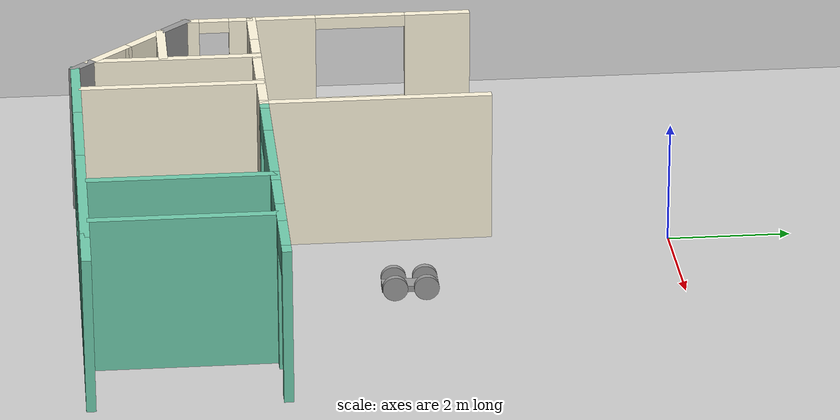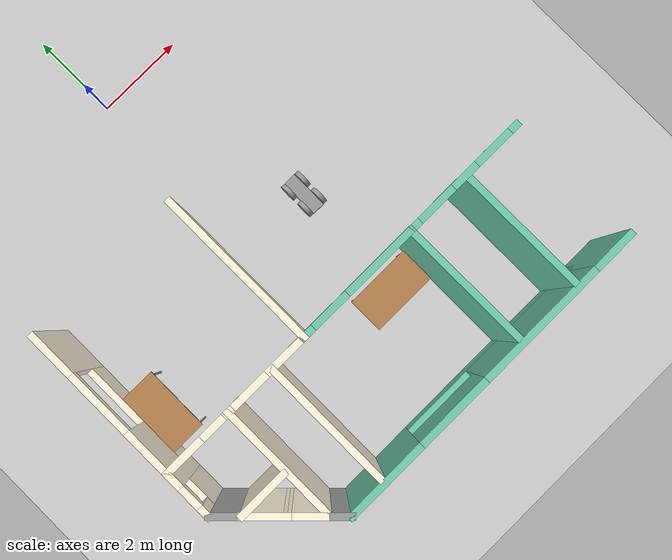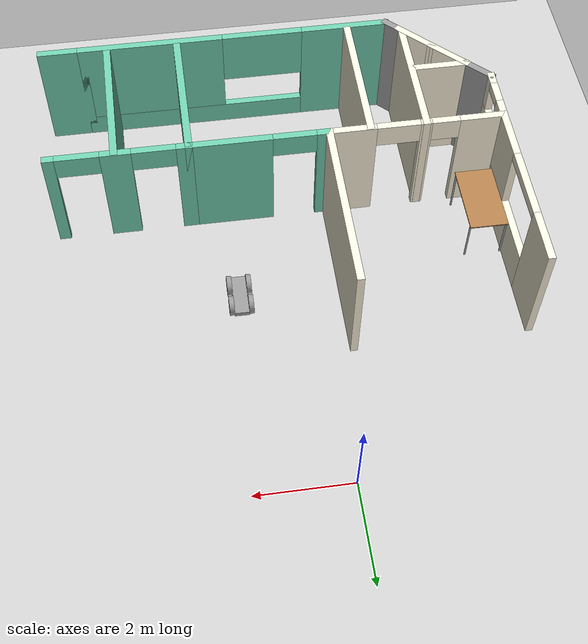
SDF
<sdf version="1.6">
 <world name="default">
  <model name="ground_plane">
   <static>1</static>
   <link name="link">
    <collision name="collision">
     <geometry><plane><normal>0 0 1</normal><size>100 100</size></plane></geometry>
     <surface><friction><ode><mu>100</mu><mu2>50</mu2></ode></friction></surface>
    </collision>
    <visual name="visual">
     <cast_shadows>0</cast_shadows>
     <geometry><plane><normal>0 0 1</normal><size>100 100</size></plane></geometry>
     <material>
      <script><uri>file://media/materials/scripts/gazebo.material</uri><name>Gazebo/Grey</name></script>
     </material>
    </visual>
   </link>
  </model>
  <model name="Building">
   <pose>0.68406 -1.71329 0 0 -0 0</pose>
   <link name="Wall_103">
    <collision name="Wall_103_Collision">
     <geometry><box><size>2.75 0.15 2.5</size></box></geometry>
     <pose>0 0 1.25 0 -0 0</pose>
    </collision>
    <visual name="Wall_103_Visual">
     <pose>0 0 1.25 0 -0 0</pose>
     <geometry><box><size>2.75 0.15 2.5</size></box></geometry>
     <material>
      <script><uri>file://media/materials/scripts/gazebo.material</uri><name>Gazebo/Grey</name></script>
      <ambient>1 0.968627 0.870588 1</ambient>
     </material>
     <meta><layer>0</layer></meta>
    </visual>
    <pose>-3.10082 -6.11639 0 0 -0 1.5708</pose>
   </link>
   <link name="Wall_105">
    <collision name="Wall_105_Collision">
     <geometry><box><size>1.0071 0.15 2.5</size></box></geometry>
     <pose>0 0 1.25 0 -0 0</pose>
    </collision>
    <visual name="Wall_105_Visual">
     <pose>0 0 1.25 0 -0 0</pose>
     <geometry><box><size>1.0071 0.15 2.5</size></box></geometry>
     <material>
      <script><uri>file://media/materials/scripts/gazebo.material</uri><name>Gazebo/Grey</name></script>
      <ambient>1 0.968627 0.870588 1</ambient>
     </material>
     <meta><layer>0</layer></meta>
    </visual>
    <pose>-3.96602 -6.6535 0 0 0 -0.777148</pose>
   </link>
   <link name="Wall_106">
    <collision name="Wall_106_Collision">
     <geometry><box><size>1 0.15 2.5</size></box></geometry>
     <pose>0 0 1.25 0 -0 0</pose>
    </collision>
    <visual name="Wall_106_Visual">
     <pose>0 0 1.25 0 -0 0</pose>
     <geometry><box><size>1 0.15 2.5</size></box></geometry>
     <material>
      <script><uri>file://media/materials/scripts/gazebo.material</uri><name>Gazebo/Grey</name></script>
      <ambient>1 0.968627 0.870588 1</ambient>
     </material>
     <meta><layer>0</layer></meta>
    </visual>
    <pose>-3.35998 -7.25454 0 0 0 -0.785398</pose>
   </link>
   <link name="Wall_107">
    <collision name="Wall_107_Collision">
     <geometry><box><size>0.5 0.15 2.5</size></box></geometry>
     <pose>0 0 1.25 0 -0 0</pose>
    </collision>
    <visual name="Wall_107_Visual">
     <pose>0 0 1.25 0 -0 0</pose>
     <geometry><box><size>0.5 0.15 2.5</size></box></geometry>
     <material>
      <script><uri>file://media/materials/scripts/gazebo.material</uri><name>Gazebo/Grey</name></script>
      <ambient>1 1 1 1</ambient>
     </material>
     <meta><layer>0</layer></meta>
    </visual>
    <pose>-2.93571 -7.6788 0 0 0 -0.785398</pose>
   </link>
   <link name="Wall_108">
    <pose>0.488031 -7.80255 0 0 -0 0</pose>
    <visual name="Wall_108_Visual_0">
     <pose>-2.41446 0 1.25 0 -0 0</pose>
     <geometry><box><size>1.92107 0.15 2.5</size></box></geometry>
     <material>
      <script><uri>file://media/materials/scripts/gazebo.material</uri><name>Gazebo/Grey</name></script>
      <ambient>0.435294 0.796078 0.67451 1</ambient>
     </material>
     <meta><layer>0</layer></meta>
    </visual>
    <collision name="Wall_108_Collision_0">
     <geometry><box><size>1.92107 0.15 2.5</size></box></geometry>
     <pose>-2.41446 0 1.25 0 -0 0</pose>
    </collision>
    <visual name="Wall_108_Visual_1">
     <pose>0.960535 0 0.25 0 -0 0</pose>
     <geometry><box><size>4.82893 0.15 0.5</size></box></geometry>
     <material>
      <script><uri>file://media/materials/scripts/gazebo.material</uri><name>Gazebo/Grey</name></script>
      <ambient>0.435294 0.796078 0.67451 1</ambient>
     </material>
     <meta><layer>0</layer></meta>
    </visual>
    <collision name="Wall_108_Collision_1">
     <geometry><box><size>4.82893 0.15 0.5</size></box></geometry>
     <pose>0.960535 0 0.25 0 -0 0</pose>
    </collision>
    <visual name="Wall_108_Visual_2">
     <pose>1.82294 0 1.5 0 -0 0</pose>
     <geometry><box><size>3.10413 0.15 2</size></box></geometry>
     <material>
      <script><uri>file://media/materials/scripts/gazebo.material</uri><name>Gazebo/Grey</name></script>
      <ambient>0.435294 0.796078 0.67451 1</ambient>
     </material>
     <meta><layer>0</layer></meta>
    </visual>
    <collision name="Wall_108_Collision_2">
     <geometry><box><size>3.10413 0.15 2</size></box></geometry>
     <pose>1.82294 0 1.5 0 -0 0</pose>
    </collision>
    <visual name="Wall_108_Visual_3">
     <pose>-0.591528 0 1.9 0 -0 0</pose>
     <geometry><box><size>1.7248 0.15 1.2</size></box></geometry>
     <material>
      <script><uri>file://media/materials/scripts/gazebo.material</uri><name>Gazebo/Grey</name></script>
      <ambient>0.435294 0.796078 0.67451 1</ambient>
     </material>
     <meta><layer>0</layer></meta>
    </visual>
    <collision name="Wall_108_Collision_3">
     <geometry><box><size>1.7248 0.15 1.2</size></box></geometry>
     <pose>-0.591528 0 1.9 0 -0 0</pose>
    </collision>
   </link>
   <link name="Wall_112">
    <collision name="Wall_112_Collision">
     <geometry><box><size>1 0.15 2.5</size></box></geometry>
     <pose>0 0 1.25 0 -0 0</pose>
    </collision>
    <visual name="Wall_112_Visual">
     <pose>0 0 1.25 0 -0 0</pose>
     <geometry><box><size>1 0.15 2.5</size></box></geometry>
     <material>
      <script><uri>file://media/materials/scripts/gazebo.material</uri><name>Gazebo/Grey</name></script>
      <ambient>0.435294 0.796078 0.67451 1</ambient>
     </material>
     <meta><layer>0</layer></meta>
    </visual>
    <pose>4.21303 -7.80255 0 0 -0 0</pose>
   </link>
   <link name="Wall_131">
    <pose>0.319198 -4.81871 0 0 -0 0</pose>
    <visual name="Wall_131_Visual_0">
     <pose>-1.33501 0 1.25 0 -0 0</pose>
     <geometry><box><size>0.329979 0.15 2.5</size></box></geometry>
     <material>
      <script><uri>file://media/materials/scripts/gazebo.material</uri><name>Gazebo/Grey</name></script>
      <ambient>0.435294 0.796078 0.67451 1</ambient>
     </material>
     <meta><layer>0</layer></meta>
    </visual>
    <collision name="Wall_131_Collision_0">
     <geometry><box><size>0.329979 0.15 2.5</size></box></geometry>
     <pose>-1.33501 0 1.25 0 -0 0</pose>
    </collision>
    <visual name="Wall_131_Visual_1">
     <pose>0.614989 0 1.25 0 -0 0</pose>
     <geometry><box><size>1.77002 0.15 2.5</size></box></geometry>
     <material>
      <script><uri>file://media/materials/scripts/gazebo.material</uri><name>Gazebo/Grey</name></script>
      <ambient>0.435294 0.796078 0.67451 1</ambient>
     </material>
     <meta><layer>0</layer></meta>
    </visual>
    <collision name="Wall_131_Collision_1">
     <geometry><box><size>1.77002 0.15 2.5</size></box></geometry>
     <pose>0.614989 0 1.25 0 -0 0</pose>
    </collision>
    <visual name="Wall_131_Visual_2">
     <pose>-0.720021 0 2.25 0 -0 0</pose>
     <geometry><box><size>0.9 0.15 0.5</size></box></geometry>
     <material>
      <script><uri>file://media/materials/scripts/gazebo.material</uri><name>Gazebo/Grey</name></script>
      <ambient>0.435294 0.796078 0.67451 1</ambient>
     </material>
     <meta><layer>0</layer></meta>
    </visual>
    <collision name="Wall_131_Collision_2">
     <geometry><box><size>0.9 0.15 0.5</size></box></geometry>
     <pose>-0.720021 0 2.25 0 -0 0</pose>
    </collision>
   </link>
   <link name="Wall_132">
    <collision name="Wall_132_Collision">
     <geometry><box><size>3 0.15 2.5</size></box></geometry>
     <pose>0 0 1.25 0 -0 0</pose>
    </collision>
    <visual name="Wall_132_Visual">
     <pose>0 0 1.25 0 -0 0</pose>
     <geometry><box><size>3 0.15 2.5</size></box></geometry>
     <material>
      <script><uri>file://media/materials/scripts/gazebo.material</uri><name>Gazebo/Grey</name></script>
      <ambient>0.435294 0.796078 0.67451 1</ambient>
     </material>
     <meta><layer>0</layer></meta>
    </visual>
    <pose>1.7442 -6.24371 0 0 0 -1.5708</pose>
   </link>
   <link name="Wall_135">
    <pose>3.1692 -4.81871 0 0 -0 0</pose>
    <visual name="Wall_135_Visual_0">
     <pose>-1.33501 0 1.25 0 -0 0</pose>
     <geometry><box><size>0.329979 0.15 2.5</size></box></geometry>
     <material>
      <script><uri>file://media/materials/scripts/gazebo.material</uri><name>Gazebo/Grey</name></script>
      <ambient>0.435294 0.796078 0.67451 1</ambient>
     </material>
     <meta><layer>0</layer></meta>
    </visual>
    <collision name="Wall_135_Collision_0">
     <geometry><box><size>0.329979 0.15 2.5</size></box></geometry>
     <pose>-1.33501 0 1.25 0 -0 0</pose>
    </collision>
    <visual name="Wall_135_Visual_1">
     <pose>0.044978 0 1.25 0 -0 0</pose>
     <geometry><box><size>0.63 0.15 2.5</size></box></geometry>
     <material>
      <script><uri>file://media/materials/scripts/gazebo.material</uri><name>Gazebo/Grey</name></script>
      <ambient>0.435294 0.796078 0.67451 1</ambient>
     </material>
     <meta><layer>0</layer></meta>
    </visual>
    <collision name="Wall_135_Collision_1">
     <geometry><box><size>0.63 0.15 2.5</size></box></geometry>
     <pose>0.044978 0 1.25 0 -0 0</pose>
    </collision>
    <visual name="Wall_135_Visual_2">
     <pose>1.37999 0 1.25 0 -0 0</pose>
     <geometry><box><size>0.240022 0.15 2.5</size></box></geometry>
     <material>
      <script><uri>file://media/materials/scripts/gazebo.material</uri><name>Gazebo/Grey</name></script>
      <ambient>0.435294 0.796078 0.67451 1</ambient>
     </material>
     <meta><layer>0</layer></meta>
    </visual>
    <collision name="Wall_135_Collision_2">
     <geometry><box><size>0.240022 0.15 2.5</size></box></geometry>
     <pose>1.37999 0 1.25 0 -0 0</pose>
    </collision>
    <visual name="Wall_135_Visual_3">
     <pose>-0.720021 0 2.25 0 -0 0</pose>
     <geometry><box><size>0.9 0.15 0.5</size></box></geometry>
     <material>
      <script><uri>file://media/materials/scripts/gazebo.material</uri><name>Gazebo/Grey</name></script>
      <ambient>0.435294 0.796078 0.67451 1</ambient>
     </material>
     <meta><layer>0</layer></meta>
    </visual>
    <collision name="Wall_135_Collision_3">
     <geometry><box><size>0.9 0.15 0.5</size></box></geometry>
     <pose>-0.720021 0 2.25 0 -0 0</pose>
    </collision>
    <visual name="Wall_135_Visual_4">
     <pose>0.809978 0 2.25 0 -0 0</pose>
     <geometry><box><size>0.9 0.15 0.5</size></box></geometry>
     <material>
      <script><uri>file://media/materials/scripts/gazebo.material</uri><name>Gazebo/Grey</name></script>
      <ambient>0.435294 0.796078 0.67451 1</ambient>
     </material>
     <meta><layer>0</layer></meta>
    </visual>
    <collision name="Wall_135_Collision_4">
     <geometry><box><size>0.9 0.15 0.5</size></box></geometry>
     <pose>0.809978 0 2.25 0 -0 0</pose>
    </collision>
   </link>
   <link name="Wall_137">
    <collision name="Wall_137_Collision">
     <geometry><box><size>3 0.15 2.5</size></box></geometry>
     <pose>0 0 1.25 0 -0 0</pose>
    </collision>
    <visual name="Wall_137_Visual">
     <pose>0 0 1.25 0 -0 0</pose>
     <geometry><box><size>3 0.15 2.5</size></box></geometry>
     <material>
      <script><uri>file://media/materials/scripts/gazebo.material</uri><name>Gazebo/Grey</name></script>
      <ambient>0.435294 0.796078 0.67451 1</ambient>
     </material>
     <meta><layer>0</layer></meta>
    </visual>
    <pose>3.23918 -6.26139 0 0 0 -1.5708</pose>
   </link>
   <link name="Wall_62">
    <collision name="Wall_62_Collision">
     <geometry><box><size>3.75 0.15 2.5</size></box></geometry>
     <pose>0 0 1.25 0 -0 0</pose>
    </collision>
    <visual name="Wall_62_Visual">
     <pose>0 0 1.25 0 -0 0</pose>
     <geometry><box><size>3.75 0.15 2.5</size></box></geometry>
     <material>
      <script><uri>file://media/materials/scripts/gazebo.material</uri><name>Gazebo/Grey</name></script>
      <ambient>1 0.968627 0.870588 1</ambient>
     </material>
     <meta><layer>0</layer></meta>
    </visual>
    <pose>-1.1058 -3.01871 0 0 0 -1.5708</pose>
   </link>
   <link name="Wall_71">
    <pose>-4.7058 -3.01871 0 0 0 -1.5708</pose>
    <visual name="Wall_71_Visual_0">
     <pose>-1.32556 0 1.25 0 -0 0</pose>
     <geometry><box><size>1.09888 0.15 2.5</size></box></geometry>
     <material>
      <script><uri>file://media/materials/scripts/gazebo.material</uri><name>Gazebo/Grey</name></script>
      <ambient>1 0.968627 0.870588 1</ambient>
     </material>
     <meta><layer>0</layer></meta>
    </visual>
    <collision name="Wall_71_Collision_0">
     <geometry><box><size>1.09888 0.15 2.5</size></box></geometry>
     <pose>-1.32556 0 1.25 0 -0 0</pose>
    </collision>
    <visual name="Wall_71_Visual_1">
     <pose>0.549443 0 0.5 0 -0 0</pose>
     <geometry><box><size>2.65111 0.15 1</size></box></geometry>
     <material>
      <script><uri>file://media/materials/scripts/gazebo.material</uri><name>Gazebo/Grey</name></script>
      <ambient>1 0.968627 0.870588 1</ambient>
     </material>
     <meta><layer>0</layer></meta>
    </visual>
    <collision name="Wall_71_Collision_1">
     <geometry><box><size>2.65111 0.15 1</size></box></geometry>
     <pose>0.549443 0 0.5 0 -0 0</pose>
    </collision>
    <visual name="Wall_71_Visual_2">
     <pose>1.29944 0 1.75 0 -0 0</pose>
     <geometry><box><size>1.15112 0.15 1.5</size></box></geometry>
     <material>
      <script><uri>file://media/materials/scripts/gazebo.material</uri><name>Gazebo/Grey</name></script>
      <ambient>1 0.968627 0.870588 1</ambient>
     </material>
     <meta><layer>0</layer></meta>
    </visual>
    <collision name="Wall_71_Collision_2">
     <geometry><box><size>1.15112 0.15 1.5</size></box></geometry>
     <pose>1.29944 0 1.75 0 -0 0</pose>
    </collision>
    <visual name="Wall_71_Visual_3">
     <pose>-0.026115 0 2.4 0 -0 0</pose>
     <geometry><box><size>1.5 0.15 0.2</size></box></geometry>
     <material>
      <script><uri>file://media/materials/scripts/gazebo.material</uri><name>Gazebo/Grey</name></script>
      <ambient>1 0.968627 0.870588 1</ambient>
     </material>
     <meta><layer>0</layer></meta>
    </visual>
    <collision name="Wall_71_Collision_3">
     <geometry><box><size>1.5 0.15 0.2</size></box></geometry>
     <pose>-0.026115 0 2.4 0 -0 0</pose>
    </collision>
   </link>
   <link name="Wall_72">
    <pose>-2.9058 -4.81871 0 0 -0 0</pose>
    <visual name="Wall_72_Visual_0">
     <pose>-1.38251 0 1.25 0 -0 0</pose>
     <geometry><box><size>0.984979 0.15 2.5</size></box></geometry>
     <material>
      <script><uri>file://media/materials/scripts/gazebo.material</uri><name>Gazebo/Grey</name></script>
      <ambient>1 0.968627 0.870588 1</ambient>
     </material>
     <meta><layer>0</layer></meta>
    </visual>
    <collision name="Wall_72_Collision_0">
     <geometry><box><size>0.984979 0.15 2.5</size></box></geometry>
     <pose>-1.38251 0 1.25 0 -0 0</pose>
    </collision>
    <visual name="Wall_72_Visual_1">
     <pose>-0.192521 0 1.25 0 -0 0</pose>
     <geometry><box><size>0.235 0.15 2.5</size></box></geometry>
     <material>
      <script><uri>file://media/materials/scripts/gazebo.material</uri><name>Gazebo/Grey</name></script>
      <ambient>1 0.968627 0.870588 1</ambient>
     </material>
     <meta><layer>0</layer></meta>
    </visual>
    <collision name="Wall_72_Collision_1">
     <geometry><box><size>0.235 0.15 2.5</size></box></geometry>
     <pose>-0.192521 0 1.25 0 -0 0</pose>
    </collision>
    <visual name="Wall_72_Visual_2">
     <pose>1.34999 0 1.25 0 -0 0</pose>
     <geometry><box><size>1.05002 0.15 2.5</size></box></geometry>
     <material>
      <script><uri>file://media/materials/scripts/gazebo.material</uri><name>Gazebo/Grey</name></script>
      <ambient>1 0.968627 0.870588 1</ambient>
     </material>
     <meta><layer>0</layer></meta>
    </visual>
    <collision name="Wall_72_Collision_2">
     <geometry><box><size>1.05002 0.15 2.5</size></box></geometry>
     <pose>1.34999 0 1.25 0 -0 0</pose>
    </collision>
    <visual name="Wall_72_Visual_3">
     <pose>-0.600021 0 2.25 0 -0 0</pose>
     <geometry><box><size>0.58 0.15 0.5</size></box></geometry>
     <material>
      <script><uri>file://media/materials/scripts/gazebo.material</uri><name>Gazebo/Grey</name></script>
      <ambient>1 0.968627 0.870588 1</ambient>
     </material>
     <meta><layer>0</layer></meta>
    </visual>
    <collision name="Wall_72_Collision_3">
     <geometry><box><size>0.58 0.15 0.5</size></box></geometry>
     <pose>-0.600021 0 2.25 0 -0 0</pose>
    </collision>
    <visual name="Wall_72_Visual_4">
     <pose>0.374979 0 2.25 0 -0 0</pose>
     <geometry><box><size>0.9 0.15 0.5</size></box></geometry>
     <material>
      <script><uri>file://media/materials/scripts/gazebo.material</uri><name>Gazebo/Grey</name></script>
      <ambient>1 0.968627 0.870588 1</ambient>
     </material>
     <meta><layer>0</layer></meta>
    </visual>
    <collision name="Wall_72_Collision_4">
     <geometry><box><size>0.9 0.15 0.5</size></box></geometry>
     <pose>0.374979 0 2.25 0 -0 0</pose>
    </collision>
   </link>
   <link name="Wall_86">
    <collision name="Wall_86_Collision">
     <geometry><box><size>3 0.15 2.5</size></box></geometry>
     <pose>0 0 1.25 0 -0 0</pose>
    </collision>
    <visual name="Wall_86_Visual">
     <pose>0 0 1.25 0 -0 0</pose>
     <geometry><box><size>3 0.15 2.5</size></box></geometry>
     <material>
      <script><uri>file://media/materials/scripts/gazebo.material</uri><name>Gazebo/Grey</name></script>
      <ambient>1 0.968627 0.870588 1</ambient>
     </material>
     <meta><layer>0</layer></meta>
    </visual>
    <pose>-1.95082 -6.26139 0 0 0 -1.5708</pose>
   </link>
   <link name="Wall_91">
    <pose>-4.7058 -5.36871 0 0 0 -1.5708</pose>
    <visual name="Wall_91_Visual_0">
     <pose>-0.399464 0 1.25 0 -0 0</pose>
     <geometry><box><size>0.451073 0.15 2.5</size></box></geometry>
     <material>
      <script><uri>file://media/materials/scripts/gazebo.material</uri><name>Gazebo/Grey</name></script>
      <ambient>1 0.968627 0.870588 1</ambient>
     </material>
     <meta><layer>0</layer></meta>
    </visual>
    <collision name="Wall_91_Collision_0">
     <geometry><box><size>0.451073 0.15 2.5</size></box></geometry>
     <pose>-0.399464 0 1.25 0 -0 0</pose>
    </collision>
    <visual name="Wall_91_Visual_1">
     <pose>0.225536 0 0.85 0 -0 0</pose>
     <geometry><box><size>0.798927 0.15 1.7</size></box></geometry>
     <material>
      <script><uri>file://media/materials/scripts/gazebo.material</uri><name>Gazebo/Grey</name></script>
      <ambient>1 0.968627 0.870588 1</ambient>
     </material>
     <meta><layer>0</layer></meta>
    </visual>
    <collision name="Wall_91_Collision_1">
     <geometry><box><size>0.798927 0.15 1.7</size></box></geometry>
     <pose>0.225536 0 0.85 0 -0 0</pose>
    </collision>
    <visual name="Wall_91_Visual_2">
     <pose>0.475536 0 2.1 0 -0 0</pose>
     <geometry><box><size>0.298927 0.15 0.8</size></box></geometry>
     <material>
      <script><uri>file://media/materials/scripts/gazebo.material</uri><name>Gazebo/Grey</name></script>
      <ambient>1 0.968627 0.870588 1</ambient>
     </material>
     <meta><layer>0</layer></meta>
    </visual>
    <collision name="Wall_91_Collision_2">
     <geometry><box><size>0.298927 0.15 0.8</size></box></geometry>
     <pose>0.475536 0 2.1 0 -0 0</pose>
    </collision>
    <visual name="Wall_91_Visual_3">
     <pose>0.076073 0 2.4 0 -0 0</pose>
     <geometry><box><size>0.5 0.15 0.2</size></box></geometry>
     <material>
      <script><uri>file://media/materials/scripts/gazebo.material</uri><name>Gazebo/Grey</name></script>
      <ambient>1 0.968627 0.870588 1</ambient>
     </material>
     <meta><layer>0</layer></meta>
    </visual>
    <collision name="Wall_91_Collision_3">
     <geometry><box><size>0.5 0.15 0.2</size></box></geometry>
     <pose>0.076073 0 2.4 0 -0 0</pose>
    </collision>
   </link>
   <link name="Wall_92">
    <collision name="Wall_92_Collision">
     <geometry><box><size>0.764142 0.15 2.5</size></box></geometry>
     <pose>0 0 1.25 0 -0 0</pose>
    </collision>
    <visual name="Wall_92_Visual">
     <pose>0 0 1.25 0 -0 0</pose>
     <geometry><box><size>0.764142 0.15 2.5</size></box></geometry>
     <material>
      <script><uri>file://media/materials/scripts/gazebo.material</uri><name>Gazebo/Grey</name></script>
      <ambient>1 1 1 1</ambient>
     </material>
     <meta><layer>0</layer></meta>
    </visual>
    <pose>-4.48867 -6.13584 0 0 0 -0.785398</pose>
   </link>
   <link name="Wall_97">
    <collision name="Wall_97_Collision">
     <geometry><box><size>1.25 0.15 2.5</size></box></geometry>
     <pose>0 0 1.25 0 -0 0</pose>
    </collision>
    <visual name="Wall_97_Visual">
     <pose>0 0 1.25 0 -0 0</pose>
     <geometry><box><size>1.25 0.15 2.5</size></box></geometry>
     <material>
      <script><uri>file://media/materials/scripts/gazebo.material</uri><name>Gazebo/Grey</name></script>
      <ambient>1 0.968627 0.870588 1</ambient>
     </material>
     <meta><layer>0</layer></meta>
    </visual>
    <pose>-3.71154 -6.35298 0 0 -0 0</pose>
   </link>
   <static>1</static>
  </model>
  <model name="table">
   <static>1</static>
   <link name="link">
    <collision name="surface">
     <pose>0 0 1 0 -0 0</pose>
     <geometry><box><size>1.5 0.8 0.03</size></box></geometry>
     <surface><friction><ode><mu>0.6</mu><mu2>0.6</mu2></ode></friction></surface>
    </collision>
    <visual name="visual1">
     <pose>0 0 1 0 -0 0</pose>
     <geometry><box><size>1.5 0.8 0.03</size></box></geometry>
     <material>
      <script><uri>file://media/materials/scripts/gazebo.material</uri><name>Gazebo/Wood</name></script>
     </material>
    </visual>
    <collision name="front_left_leg">
     <pose>0.68 0.38 0.5 0 -0 0</pose>
     <geometry><cylinder><radius>0.02</radius><length>1</length></cylinder></geometry>
    </collision>
    <visual name="front_left_leg">
     <pose>0.68 0.38 0.5 0 -0 0</pose>
     <geometry><cylinder><radius>0.02</radius><length>1</length></cylinder></geometry>
     <material>
      <script><uri>file://media/materials/scripts/gazebo.material</uri><name>Gazebo/Grey</name></script>
     </material>
    </visual>
    <collision name="front_right_leg">
     <pose>0.68 -0.38 0.5 0 -0 0</pose>
     <geometry><cylinder><radius>0.02</radius><length>1</length></cylinder></geometry>
    </collision>
    <visual name="front_right_leg">
     <pose>0.68 -0.38 0.5 0 -0 0</pose>
     <geometry><cylinder><radius>0.02</radius><length>1</length></cylinder></geometry>
     <material>
      <script><uri>file://media/materials/scripts/gazebo.material</uri><name>Gazebo/Grey</name></script>
     </material>
    </visual>
    <collision name="back_right_leg">
     <pose>-0.68 -0.38 0.5 0 -0 0</pose>
     <geometry><cylinder><radius>0.02</radius><length>1</length></cylinder></geometry>
    </collision>
    <visual name="back_right_leg">
     <pose>-0.68 -0.38 0.5 0 -0 0</pose>
     <geometry><cylinder><radius>0.02</radius><length>1</length></cylinder></geometry>
     <material>
      <script><uri>file://media/materials/scripts/gazebo.material</uri><name>Gazebo/Grey</name></script>
     </material>
    </visual>
    <collision name="back_left_leg">
     <pose>-0.68 0.38 0.5 0 -0 0</pose>
     <geometry><cylinder><radius>0.02</radius><length>1</length></cylinder></geometry>
    </collision>
    <visual name="back_left_leg">
     <pose>-0.68 0.38 0.5 0 -0 0</pose>
     <geometry><cylinder><radius>0.02</radius><length>1</length></cylinder></geometry>
     <material>
      <script><uri>file://media/materials/scripts/gazebo.material</uri><name>Gazebo/Grey</name></script>
     </material>
    </visual>
   </link>
   <pose>-3.54419 -5.59044 0 0 0 -1.57392</pose>
  </model>
  <model name="table_0">
   <static>1</static>
   <link name="link">
    <collision name="surface">
     <pose>0 0 1 0 -0 0</pose>
     <geometry><box><size>1.5 0.8 0.03</size></box></geometry>
     <surface><friction><ode><mu>0.6</mu><mu2>0.6</mu2></ode></friction></surface>
    </collision>
    <visual name="visual1">
     <pose>0 0 1 0 -0 0</pose>
     <geometry><box><size>1.5 0.8 0.03</size></box></geometry>
     <material>
      <script><uri>file://media/materials/scripts/gazebo.material</uri><name>Gazebo/Wood</name></script>
     </material>
    </visual>
    <collision name="front_left_leg">
     <pose>0.68 0.38 0.5 0 -0 0</pose>
     <geometry><cylinder><radius>0.02</radius><length>1</length></cylinder></geometry>
    </collision>
    <visual name="front_left_leg">
     <pose>0.68 0.38 0.5 0 -0 0</pose>
     <geometry><cylinder><radius>0.02</radius><length>1</length></cylinder></geometry>
     <material>
      <script><uri>file://media/materials/scripts/gazebo.material</uri><name>Gazebo/Grey</name></script>
     </material>
    </visual>
    <collision name="front_right_leg">
     <pose>0.68 -0.38 0.5 0 -0 0</pose>
     <geometry><cylinder><radius>0.02</radius><length>1</length></cylinder></geometry>
    </collision>
    <visual name="front_right_leg">
     <pose>0.68 -0.38 0.5 0 -0 0</pose>
     <geometry><cylinder><radius>0.02</radius><length>1</length></cylinder></geometry>
     <material>
      <script><uri>file://media/materials/scripts/gazebo.material</uri><name>Gazebo/Grey</name></script>
     </material>
    </visual>
    <collision name="back_right_leg">
     <pose>-0.68 -0.38 0.5 0 -0 0</pose>
     <geometry><cylinder><radius>0.02</radius><length>1</length></cylinder></geometry>
    </collision>
    <visual name="back_right_leg">
     <pose>-0.68 -0.38 0.5 0 -0 0</pose>
     <geometry><cylinder><radius>0.02</radius><length>1</length></cylinder></geometry>
     <material>
      <script><uri>file://media/materials/scripts/gazebo.material</uri><name>Gazebo/Grey</name></script>
     </material>
    </visual>
    <collision name="back_left_leg">
     <pose>-0.68 0.38 0.5 0 -0 0</pose>
     <geometry><cylinder><radius>0.02</radius><length>1</length></cylinder></geometry>
    </collision>
    <visual name="back_left_leg">
     <pose>-0.68 0.38 0.5 0 -0 0</pose>
     <geometry><cylinder><radius>0.02</radius><length>1</length></cylinder></geometry>
     <material>
      <script><uri>file://media/materials/scripts/gazebo.material</uri><name>Gazebo/Grey</name></script>
     </material>
    </visual>
   </link>
   <pose>1.49373 -7.12128 0 0 -0 0</pose>
  </model>
  <model name="4WheelUGV_clone">
   <link name="link_1">
    <inertial>
     <mass>1</mass>
     <inertia>
      <ixx>0.166667</ixx>
      <ixy>0</ixy>
      <ixz>0</ixz>
      <iyy>0.166667</iyy>
      <iyz>0</iyz>
      <izz>0.166667</izz>
     </inertia>
    </inertial>
    <pose>0 0 -0.035999 0 -0 0</pose>
    <visual name="visual">
     <geometry><box><size>0.3 0.9 0.1</size></box></geometry>
     <material>
      <lighting>1</lighting>
      <script><uri>file://media/materials/scripts/gazebo.material</uri><name>Gazebo/Grey</name></script>
      <shader type="pixel"><normal_map>__default__</normal_map></shader>
      <ambient>0.3 0.3 0.3 1</ambient>
      <diffuse>0.7 0.7 0.7 1</diffuse>
      <specular>0.01 0.01 0.01 1</specular>
      <emissive>0 0 0 1</emissive>
     </material>
    </visual>
    <collision name="collision">
     <geometry><box><size>0.3 0.9 0.1</size></box></geometry>
     <surface>
      <friction>
       <ode><mu>1</mu><mu2>1</mu2><fdir1>0 0 0</fdir1><slip1>0</slip1><slip2>0</slip2></ode>
       <torsional>
        <coefficient>1</coefficient>
        <patch_radius>0</patch_radius>
        <surface_radius>0</surface_radius>
        <use_patch_radius>1</use_patch_radius>
        <ode><slip>0</slip></ode>
       </torsional>
      </friction>
      <bounce><restitution_coefficient>0</restitution_coefficient><threshold>1e+06</threshold></bounce>
      <contact>
       <collide_without_contact>0</collide_without_contact>
       <collide_without_contact_bitmask>1</collide_without_contact_bitmask>
       <collide_bitmask>1</collide_bitmask>
       <ode>
        <soft_cfm>0</soft_cfm>
        <soft_erp>0.2</soft_erp>
        <kp>1e+13</kp>
        <kd>1</kd>
        <max_vel>0.01</max_vel>
        <min_depth>0</min_depth>
       </ode>
       <bullet>
        <split_impulse>1</split_impulse>
        <split_impulse_penetration_threshold>-0.01</split_impulse_penetration_threshold>
        <soft_cfm>0</soft_cfm>
        <soft_erp>0.2</soft_erp>
        <kp>1e+13</kp>
        <kd>1</kd>
       </bullet>
      </contact>
     </surface>
    </collision>
   </link>
   <link name="link_2">
    <inertial>
     <mass>1</mass>
     <inertia><ixx>0.145833</ixx><ixy>0</ixy><ixz>0</ixz><iyy>0.145833</iyy><iyz>0</iyz><izz>0.125</izz></inertia>
     <pose>0.02 0 0 0 -0 0</pose>
    </inertial>
    <pose>0.200039 0.249995 0.008996 1.5707 0 1.5707</pose>
    <visual name="visual">
     <geometry><cylinder><radius>0.2</radius><length>0.1</length></cylinder></geometry>
     <material>
      <lighting>1</lighting>
      <script><uri>file://media/materials/scripts/gazebo.material</uri><name>Gazebo/Grey</name></script>
      <shader type="pixel"><normal_map>__default__</normal_map></shader>
      <ambient>0.3 0.3 0.3 1</ambient>
      <diffuse>0.7 0.7 0.7 1</diffuse>
      <specular>0.01 0.01 0.01 1</specular>
      <emissive>0 0 0 1</emissive>
     </material>
    </visual>
    <collision name="collision">
     <geometry><cylinder><radius>0.2</radius><length>0.1</length></cylinder></geometry>
     <surface>
      <friction>
       <ode><mu>1</mu><mu2>1</mu2><fdir1>0 0 0</fdir1><slip1>0</slip1><slip2>0</slip2></ode>
       <torsional>
        <coefficient>1</coefficient>
        <patch_radius>0</patch_radius>
        <surface_radius>0</surface_radius>
        <use_patch_radius>1</use_patch_radius>
        <ode><slip>0</slip></ode>
       </torsional>
      </friction>
      <bounce><restitution_coefficient>0</restitution_coefficient><threshold>1e+06</threshold></bounce>
      <contact>
       <collide_without_contact>0</collide_without_contact>
       <collide_without_contact_bitmask>1</collide_without_contact_bitmask>
       <collide_bitmask>1</collide_bitmask>
       <ode>
        <soft_cfm>0</soft_cfm>
        <soft_erp>0.2</soft_erp>
        <kp>1e+13</kp>
        <kd>1</kd>
        <max_vel>0.01</max_vel>
        <min_depth>0</min_depth>
       </ode>
       <bullet>
        <split_impulse>1</split_impulse>
        <split_impulse_penetration_threshold>-0.01</split_impulse_penetration_threshold>
        <soft_cfm>0</soft_cfm>
        <soft_erp>0.2</soft_erp>
        <kp>1e+13</kp>
        <kd>1</kd>
       </bullet>
      </contact>
     </surface>
    </collision>
   </link>
   <link name="link_2_clone">
    <inertial>
     <mass>1</mass>
     <inertia><ixx>0.145833</ixx><ixy>0</ixy><ixz>0</ixz><iyy>0.145833</iyy><iyz>0</iyz><izz>0.125</izz></inertia>
     <pose>0.02 0 0 0 -0 0</pose>
    </inertial>
    <pose>-0.200039 0.249995 0.009001 1.5707 0 1.5707</pose>
    <visual name="visual">
     <geometry><cylinder><radius>0.2</radius><length>0.1</length></cylinder></geometry>
     <material>
      <lighting>1</lighting>
      <script><uri>file://media/materials/scripts/gazebo.material</uri><name>Gazebo/Grey</name></script>
      <shader type="pixel"><normal_map>__default__</normal_map></shader>
      <ambient>0.3 0.3 0.3 1</ambient>
      <diffuse>0.7 0.7 0.7 1</diffuse>
      <specular>0.01 0.01 0.01 1</specular>
      <emissive>0 0 0 1</emissive>
     </material>
    </visual>
    <collision name="collision">
     <geometry><cylinder><radius>0.2</radius><length>0.1</length></cylinder></geometry>
     <surface>
      <friction>
       <ode><mu>1</mu><mu2>1</mu2><fdir1>0 0 0</fdir1><slip1>0</slip1><slip2>0</slip2></ode>
       <torsional>
        <coefficient>1</coefficient>
        <patch_radius>0</patch_radius>
        <surface_radius>0</surface_radius>
        <use_patch_radius>1</use_patch_radius>
        <ode><slip>0</slip></ode>
       </torsional>
      </friction>
      <bounce><restitution_coefficient>0</restitution_coefficient><threshold>1e+06</threshold></bounce>
      <contact>
       <collide_without_contact>0</collide_without_contact>
       <collide_without_contact_bitmask>1</collide_without_contact_bitmask>
       <collide_bitmask>1</collide_bitmask>
       <ode>
        <soft_cfm>0</soft_cfm>
        <soft_erp>0.2</soft_erp>
        <kp>1e+13</kp>
        <kd>1</kd>
        <max_vel>0.01</max_vel>
        <min_depth>0</min_depth>
       </ode>
       <bullet>
        <split_impulse>1</split_impulse>
        <split_impulse_penetration_threshold>-0.01</split_impulse_penetration_threshold>
        <soft_cfm>0</soft_cfm>
        <soft_erp>0.2</soft_erp>
        <kp>1e+13</kp>
        <kd>1</kd>
       </bullet>
      </contact>
     </surface>
    </collision>
   </link>
   <link name="link_2_clone_0">
    <inertial>
     <mass>1</mass>
     <inertia><ixx>0.145833</ixx><ixy>0</ixy><ixz>0</ixz><iyy>0.145833</iyy><iyz>0</iyz><izz>0.125</izz></inertia>
     <pose>0.02 0 0 0 -0 0</pose>
    </inertial>
    <pose>-0.200039 -0.249995 0.009001 1.5707 0 1.5707</pose>
    <visual name="visual">
     <geometry><cylinder><radius>0.2</radius><length>0.1</length></cylinder></geometry>
     <material>
      <lighting>1</lighting>
      <script><uri>file://media/materials/scripts/gazebo.material</uri><name>Gazebo/Grey</name></script>
      <shader type="pixel"><normal_map>__default__</normal_map></shader>
      <ambient>0.3 0.3 0.3 1</ambient>
      <diffuse>0.7 0.7 0.7 1</diffuse>
      <specular>0.01 0.01 0.01 1</specular>
      <emissive>0 0 0 1</emissive>
     </material>
    </visual>
    <collision name="collision">
     <geometry><cylinder><radius>0.2</radius><length>0.1</length></cylinder></geometry>
     <surface>
      <friction>
       <ode><mu>1</mu><mu2>1</mu2><fdir1>0 0 0</fdir1><slip1>0</slip1><slip2>0</slip2></ode>
       <torsional>
        <coefficient>1</coefficient>
        <patch_radius>0</patch_radius>
        <surface_radius>0</surface_radius>
        <use_patch_radius>1</use_patch_radius>
        <ode><slip>0</slip></ode>
       </torsional>
      </friction>
      <bounce><restitution_coefficient>0</restitution_coefficient><threshold>1e+06</threshold></bounce>
      <contact>
       <collide_without_contact>0</collide_without_contact>
       <collide_without_contact_bitmask>1</collide_without_contact_bitmask>
       <collide_bitmask>1</collide_bitmask>
       <ode>
        <soft_cfm>0</soft_cfm>
        <soft_erp>0.2</soft_erp>
        <kp>1e+13</kp>
        <kd>1</kd>
        <max_vel>0.01</max_vel>
        <min_depth>0</min_depth>
       </ode>
       <bullet>
        <split_impulse>1</split_impulse>
        <split_impulse_penetration_threshold>-0.01</split_impulse_penetration_threshold>
        <soft_cfm>0</soft_cfm>
        <soft_erp>0.2</soft_erp>
        <kp>1e+13</kp>
        <kd>1</kd>
       </bullet>
      </contact>
     </surface>
    </collision>
   </link>
   <link name="link_2_clone_1">
    <inertial>
     <mass>1</mass>
     <inertia><ixx>0.145833</ixx><ixy>0</ixy><ixz>0</ixz><iyy>0.145833</iyy><iyz>0</iyz><izz>0.125</izz></inertia>
     <pose>0.02 0 0 0 -0 0</pose>
    </inertial>
    <pose>0.200039 -0.249995 0.009001 1.5707 0 1.5707</pose>
    <visual name="visual">
     <geometry><cylinder><radius>0.2</radius><length>0.1</length></cylinder></geometry>
     <material>
      <lighting>1</lighting>
      <script><uri>file://media/materials/scripts/gazebo.material</uri><name>Gazebo/Grey</name></script>
      <shader type="pixel"><normal_map>__default__</normal_map></shader>
      <ambient>0.3 0.3 0.3 1</ambient>
      <diffuse>0.7 0.7 0.7 1</diffuse>
      <specular>0.01 0.01 0.01 1</specular>
      <emissive>0 0 0 1</emissive>
     </material>
    </visual>
    <collision name="collision">
     <geometry><cylinder><radius>0.2</radius><length>0.1</length></cylinder></geometry>
     <surface>
      <friction>
       <ode><mu>1</mu><mu2>1</mu2><fdir1>0 0 0</fdir1><slip1>0</slip1><slip2>0</slip2></ode>
       <torsional>
        <coefficient>1</coefficient>
        <patch_radius>0</patch_radius>
        <surface_radius>0</surface_radius>
        <use_patch_radius>1</use_patch_radius>
        <ode><slip>0</slip></ode>
       </torsional>
      </friction>
      <bounce><restitution_coefficient>0</restitution_coefficient><threshold>1e+06</threshold></bounce>
      <contact>
       <collide_without_contact>0</collide_without_contact>
       <collide_without_contact_bitmask>1</collide_without_contact_bitmask>
       <collide_bitmask>1</collide_bitmask>
       <ode>
        <soft_cfm>0</soft_cfm>
        <soft_erp>0.2</soft_erp>
        <kp>1e+13</kp>
        <kd>1</kd>
        <max_vel>0.01</max_vel>
        <min_depth>0</min_depth>
       </ode>
       <bullet>
        <split_impulse>1</split_impulse>
        <split_impulse_penetration_threshold>-0.01</split_impulse_penetration_threshold>
        <soft_cfm>0</soft_cfm>
        <soft_erp>0.2</soft_erp>
        <kp>1e+13</kp>
        <kd>1</kd>
       </bullet>
      </contact>
     </surface>
    </collision>
   </link>
   <joint name="link_1_JOINT_0" type="revolute">
    <parent>link_1</parent>
    <child>link_2_clone_0</child>
    <axis>
     <xyz>1 0 0</xyz>
     <use_parent_model_frame>0</use_parent_model_frame>
     <limit>
      <lower>-1.79769e+308</lower>
      <upper>1.79769e+308</upper>
      <effort>-1</effort>
      <velocity>-1</velocity>
     </limit>
     <dynamics>
      <spring_reference>0</spring_reference>
      <spring_stiffness>0</spring_stiffness>
      <damping>0</damping>
     </dynamics>
    </axis>
    <physics>
     <ode><limit><cfm>0</cfm><erp>0.2</erp></limit><suspension><cfm>0</cfm><erp>0.2</erp></suspension></ode>
    </physics>
   </joint>
   <joint name="link_1_JOINT_1" type="revolute">
    <parent>link_1</parent>
    <child>link_2_clone_1</child>
    <axis>
     <xyz>1 0 0</xyz>
     <use_parent_model_frame>0</use_parent_model_frame>
     <limit>
      <lower>-1.79769e+308</lower>
      <upper>1.79769e+308</upper>
      <effort>-1</effort>
      <velocity>-1</velocity>
     </limit>
     <dynamics>
      <spring_reference>0</spring_reference>
      <spring_stiffness>0</spring_stiffness>
      <damping>0</damping>
     </dynamics>
    </axis>
    <physics>
     <ode><limit><cfm>0</cfm><erp>0.2</erp></limit><suspension><cfm>0</cfm><erp>0.2</erp></suspension></ode>
    </physics>
   </joint>
   <joint name="link_1_JOINT_2" type="revolute">
    <parent>link_1</parent>
    <child>link_2</child>
    <axis>
     <xyz>1 0 0</xyz>
     <use_parent_model_frame>0</use_parent_model_frame>
     <limit>
      <lower>-1.79769e+308</lower>
      <upper>1.79769e+308</upper>
      <effort>-1</effort>
      <velocity>-1</velocity>
     </limit>
     <dynamics>
      <spring_reference>0</spring_reference>
      <spring_stiffness>0</spring_stiffness>
      <damping>0</damping>
     </dynamics>
    </axis>
    <physics>
     <ode><limit><cfm>0</cfm><erp>0.2</erp></limit><suspension><cfm>0</cfm><erp>0.2</erp></suspension></ode>
    </physics>
   </joint>
   <joint name="link_1_JOINT_3" type="revolute">
    <parent>link_1</parent>
    <child>link_2_clone</child>
    <axis>
     <xyz>1 0 0</xyz>
     <use_parent_model_frame>0</use_parent_model_frame>
     <limit>
      <lower>-1.79769e+308</lower>
      <upper>1.79769e+308</upper>
      <effort>-1</effort>
      <velocity>-1</velocity>
     </limit>
     <dynamics>
      <spring_reference>0</spring_reference>
      <spring_stiffness>0</spring_stiffness>
      <damping>0</damping>
     </dynamics>
    </axis>
    <physics>
     <ode><limit><cfm>0</cfm><erp>0.2</erp></limit><suspension><cfm>0</cfm><erp>0.2</erp></suspension></ode>
    </physics>
   </joint>
   <static>0</static>
   <pose>1.70213 -4.37443 0.191001 1e-05 -4e-06 -0.00961</pose>
  </model>
 </world>
</sdf>
